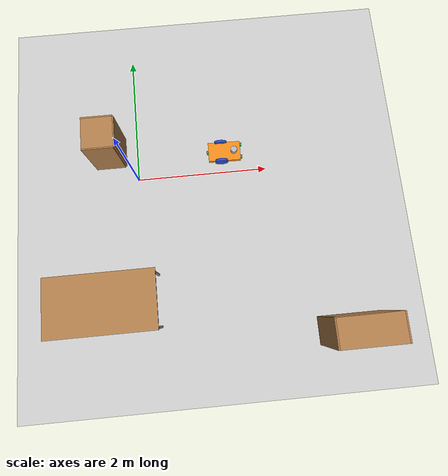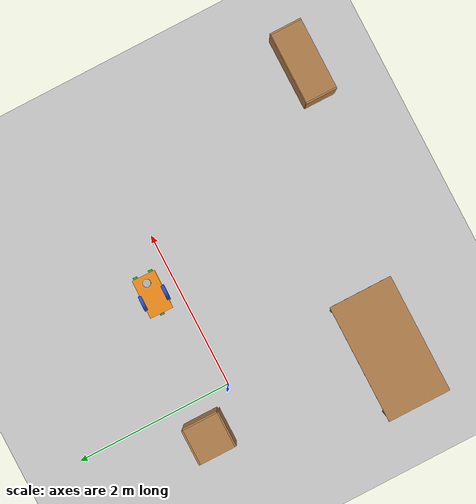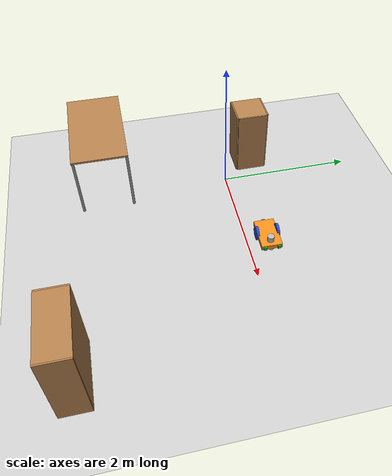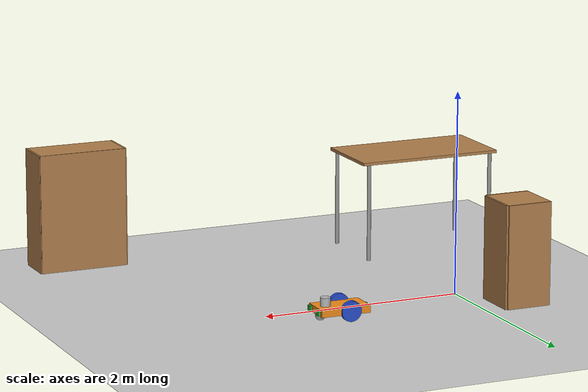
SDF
<sdf version="1.7">
 <world name="default">
  <light name="sun" type="directional">
   <pose>0 0 10 0 -0 0</pose>
   <diffuse>0.8 0.8 0.8 1</diffuse>
   <specular>0.2 0.2 0.2 1</specular>
   <attenuation>
    <range>1000</range>
    <constant>0.9</constant>
    <linear>0.01</linear>
    <quadratic>0.001</quadratic>
   </attenuation>
   <direction>-0.5 0.1 -0.9</direction>
   <spot><inner_angle>0</inner_angle><outer_angle>0</outer_angle><falloff>0</falloff></spot>
  </light>
  <model name="ground_plane">
   <static>1</static>
   <link name="link">
    <collision name="collision">
     <geometry><plane><normal>0 0 1</normal><size>100 100</size></plane></geometry>
     <surface><friction><ode><mu>100</mu><mu2>50</mu2></ode></friction></surface>
    </collision>
    <visual name="visual">
     <cast_shadows>0</cast_shadows>
     <geometry><plane><normal>0 0 1</normal><size>100 100</size></plane></geometry>
     <material>
      <script><uri>file://media/materials/scripts/gazebo.material</uri><name>Gazebo/Grey</name></script>
     </material>
    </visual>
   </link>
  </model>
  <gravity>0 0 -9.8</gravity>
  <magnetic_field>6e-06 2.3e-05 -4.2e-05</magnetic_field>
  <atmosphere type="adiabatic"/>
  <physics type="ode">
   <max_step_size>0.001</max_step_size>
   <real_time_factor>1</real_time_factor>
   <real_time_update_rate>1000</real_time_update_rate>
  </physics>
  <scene><ambient>0.4 0.4 0.4 1</ambient><background>0.7 0.7 0.7 1</background><shadows>1</shadows></scene>
  <spherical_coordinates>
   <surface_model>EARTH_WGS84</surface_model>
   <latitude_deg>0</latitude_deg>
   <longitude_deg>0</longitude_deg>
   <elevation>0</elevation>
   <heading_deg>0</heading_deg>
  </spherical_coordinates>
  <model name="first">
   <link name="link_chassis">
    <inertial>
     <pose>0.027778 0 0.090476 0 -0 0</pose>
     <mass>6.3</mass>
     <inertia>
      <ixx>0.0463316</ixx>
      <ixy>4.81868e-20</ixy>
      <ixz>0.00533333</ixz>
      <iyy>0.147387</iyy>
      <iyz>1.56951e-19</iyz>
      <izz>0.14585</izz>
     </inertia>
    </inertial>
    <collision name="link_chassis_fixed_joint_lump__collision_chassis_collision">
     <geometry><box><size>0.5 0.3 0.07</size></box></geometry>
    </collision>
    <collision name="link_chassis_fixed_joint_lump__caster_front_collision_collision_1">
     <pose>0.35 0 -0.05 0 -0 0</pose>
     <geometry><sphere><radius>0.05</radius></sphere></geometry>
    </collision>
    <collision name="link_chassis_fixed_joint_lump__camera_collision_2">
     <pose>0.25 0.1 0 0 -0 0</pose>
     <geometry><box><size>0.05 0.05 0.05</size></box></geometry>
    </collision>
    <collision name="link_chassis_fixed_joint_lump__camera2_collision_3">
     <pose>0.25 -0.1 0 0 -0 0</pose>
     <geometry><box><size>0.05 0.05 0.05</size></box></geometry>
    </collision>
    <collision name="link_chassis_fixed_joint_lump__camera3_collision_4">
     <pose>-0.25 0 0 0 -0 3.14</pose>
     <geometry><box><size>0.05 0.05 0.05</size></box></geometry>
    </collision>
    <collision name="link_chassis_fixed_joint_lump__sensor_laser_collision_5">
     <pose>0.15 0 0.07 0 -0 0</pose>
     <geometry><cylinder><length>0.1</length><radius>0.05</radius></cylinder></geometry>
    </collision>
    <visual name="link_chassis_visual">
     <geometry><box><size>0.5 0.3 0.07</size></box></geometry>
     <material>
      <script><name>Gazebo/Orange</name><uri>file://media/materials/scripts/gazebo.material</uri></script>
     </material>
    </visual>
    <visual name="link_chassis_fixed_joint_lump__caster_front_visual_visual_1">
     <pose>0.2 0 -0.05 0 -0 0</pose>
     <geometry><sphere><radius>0.05</radius></sphere></geometry>
    </visual>
    <visual name="link_chassis_fixed_joint_lump__camera_visual_2">
     <pose>0.25 0.1 0 0 -0 0</pose>
     <geometry><box><size>0.05 0.05 0.05</size></box></geometry>
     <material>
      <script><name>Gazebo/Green</name><uri>file://media/materials/scripts/gazebo.material</uri></script>
     </material>
    </visual>
    <visual name="link_chassis_fixed_joint_lump__camera2_visual_3">
     <pose>0.25 -0.1 0 0 -0 0</pose>
     <geometry><box><size>0.05 0.05 0.05</size></box></geometry>
     <material>
      <script><name>Gazebo/Green</name><uri>file://media/materials/scripts/gazebo.material</uri></script>
     </material>
    </visual>
    <visual name="link_chassis_fixed_joint_lump__camera3_visual_4">
     <pose>-0.25 0 0 0 -0 3.14</pose>
     <geometry><box><size>0.05 0.05 0.05</size></box></geometry>
     <material>
      <script><name>Gazebo/Green</name><uri>file://media/materials/scripts/gazebo.material</uri></script>
     </material>
    </visual>
    <visual name="link_chassis_fixed_joint_lump__sensor_laser_visual_5">
     <pose>0.15 0 0.07 0 -0 0</pose>
     <geometry><cylinder><length>0.1</length><radius>0.05</radius></cylinder></geometry>
    </visual>
    <sensor name="camera1" type="camera">
     <update_rate>30</update_rate>
     <camera name="head">
      <horizontal_fov>1.39626</horizontal_fov>
      <image><width>800</width><height>800</height><format>R8G8B8</format></image>
      <clip><near>0.02</near><far>300</far></clip>
     </camera>
     <plugin name="camera_controller" filename="libgazebo_ros_camera.so">
      <alwaysOn>1</alwaysOn>
      <updateRate>0.0</updateRate>
      <cameraName>mybot/camera1</cameraName>
      <imageTopicName>image_raw</imageTopicName>
      <cameraInfoTopicName>camera_info</cameraInfoTopicName>
      <frameName>camera</frameName>
      <hackBaseline>0.07</hackBaseline>
      <distortionK1>0.0</distortionK1>
      <distortionK2>0.0</distortionK2>
      <distortionK3>0.0</distortionK3>
      <distortionT1>0.0</distortionT1>
      <distortionT2>0.0</distortionT2>
      <robotNamespace>/</robotNamespace>
     </plugin>
     <pose>0.25 0.1 0 0 -0 0</pose>
    </sensor>
    <sensor name="camera2" type="camera">
     <update_rate>30</update_rate>
     <camera name="head">
      <horizontal_fov>1.39626</horizontal_fov>
      <image><width>800</width><height>800</height><format>R8G8B8</format></image>
      <clip><near>0.02</near><far>300</far></clip>
     </camera>
     <plugin name="camera_controller" filename="libgazebo_ros_camera.so">
      <alwaysOn>1</alwaysOn>
      <updateRate>0.0</updateRate>
      <cameraName>mybot/camera2</cameraName>
      <imageTopicName>image_raw</imageTopicName>
      <cameraInfoTopicName>camera_info</cameraInfoTopicName>
      <frameName>camera</frameName>
      <hackBaseline>0.07</hackBaseline>
      <distortionK1>0.0</distortionK1>
      <distortionK2>0.0</distortionK2>
      <distortionK3>0.0</distortionK3>
      <distortionT1>0.0</distortionT1>
      <distortionT2>0.0</distortionT2>
      <robotNamespace>/</robotNamespace>
     </plugin>
     <pose>0.25 -0.1 0 0 -0 0</pose>
    </sensor>
    <sensor name="camera3" type="camera">
     <update_rate>30</update_rate>
     <camera name="head">
      <horizontal_fov>1.39626</horizontal_fov>
      <image><width>800</width><height>800</height><format>R8G8B8</format></image>
      <clip><near>0.02</near><far>300</far></clip>
     </camera>
     <plugin name="camera_controller" filename="libgazebo_ros_camera.so">
      <alwaysOn>1</alwaysOn>
      <updateRate>0.0</updateRate>
      <cameraName>mybot/camera3</cameraName>
      <imageTopicName>image_raw</imageTopicName>
      <cameraInfoTopicName>camera_info</cameraInfoTopicName>
      <frameName>camera</frameName>
      <hackBaseline>0.07</hackBaseline>
      <distortionK1>0.0</distortionK1>
      <distortionK2>0.0</distortionK2>
      <distortionK3>0.0</distortionK3>
      <distortionT1>0.0</distortionT1>
      <distortionT2>0.0</distortionT2>
      <robotNamespace>/</robotNamespace>
     </plugin>
     <pose>-0.25 0 0 0 -0 3.14</pose>
    </sensor>
    <sensor name="head_hokuyo_sensor" type="ray">
     <visualize>1</visualize>
     <update_rate>40</update_rate>
     <ray>
      <scan>
       <horizontal>
        <samples>720</samples>
        <resolution>1</resolution>
        <min_angle>-3.14159</min_angle>
        <max_angle>3.14159</max_angle>
       </horizontal>
       <vertical><samples>1</samples><min_angle>0</min_angle><max_angle>0</max_angle></vertical>
      </scan>
      <range><min>0.1</min><max>30</max><resolution>0.01</resolution></range>
      <noise><type>gaussian</type><mean>0</mean><stddev>0.01</stddev></noise>
     </ray>
     <plugin name="gazebo_ros_head_hokuyo_controller" filename="libgazebo_ros_laser.so">
      <topicName>/first/laser/scan</topicName>
      <frameName>sensor_laser</frameName>
      <robotNamespace>/</robotNamespace>
     </plugin>
     <pose>0.15 0 0.07 0 -0 0</pose>
    </sensor>
   </link>
   <joint name="joint_left_wheel" type="revolute">
    <pose relative_to="link_chassis">-0.05 -0.15 0 0 -0 0</pose>
    <parent>link_chassis</parent>
    <child>link_left_wheel</child>
    <axis>
     <xyz>0 1 0</xyz>
     <limit><lower>-1e+16</lower><upper>1e+16</upper></limit>
     <dynamics><spring_reference>0</spring_reference><spring_stiffness>0</spring_stiffness></dynamics>
    </axis>
   </joint>
   <link name="link_left_wheel">
    <pose relative_to="joint_left_wheel">0 0 0 0 -0 0</pose>
    <inertial>
     <pose>0 0 0 -0 1.5707 1.5707</pose>
     <mass>0.2</mass>
     <inertia>
      <ixx>0.000526667</ixx>
      <ixy>0</ixy>
      <ixz>0</ixz>
      <iyy>0.000526667</iyy>
      <iyz>0</iyz>
      <izz>0.001</izz>
     </inertia>
    </inertial>
    <collision name="link_left_wheel_collision_collision">
     <pose>0 0 0 1.57089 1.57079 -3.14159</pose>
     <geometry><cylinder><length>0.04</length><radius>0.1</radius></cylinder></geometry>
    </collision>
    <visual name="link_left_wheel_visual_visual">
     <pose>0 0 0 1.57089 1.57079 -3.14159</pose>
     <geometry><cylinder><length>0.04</length><radius>0.1</radius></cylinder></geometry>
     <material>
      <script><name>Gazebo/Blue</name><uri>file://media/materials/scripts/gazebo.material</uri></script>
     </material>
    </visual>
   </link>
   <joint name="joint_right_wheel" type="revolute">
    <pose relative_to="link_chassis">-0.05 0.15 0 0 -0 0</pose>
    <parent>link_chassis</parent>
    <child>link_right_wheel</child>
    <axis>
     <xyz>0 1 0</xyz>
     <limit><lower>-1e+16</lower><upper>1e+16</upper></limit>
     <dynamics><spring_reference>0</spring_reference><spring_stiffness>0</spring_stiffness></dynamics>
    </axis>
   </joint>
   <link name="link_right_wheel">
    <pose relative_to="joint_right_wheel">0 0 0 0 -0 0</pose>
    <inertial>
     <pose>0 0 0 -0 1.5707 1.5707</pose>
     <mass>0.2</mass>
     <inertia>
      <ixx>0.000526667</ixx>
      <ixy>0</ixy>
      <ixz>0</ixz>
      <iyy>0.000526667</iyy>
      <iyz>0</iyz>
      <izz>0.001</izz>
     </inertia>
    </inertial>
    <collision name="link_right_wheel_collision_collision">
     <pose>0 0 0 1.57089 1.57079 -3.14159</pose>
     <geometry><cylinder><length>0.04</length><radius>0.1</radius></cylinder></geometry>
    </collision>
    <visual name="link_right_wheel_visual_visual">
     <pose>0 0 0 1.57089 1.57079 -3.14159</pose>
     <geometry><cylinder><length>0.04</length><radius>0.1</radius></cylinder></geometry>
     <material>
      <script><name>Gazebo/Blue</name><uri>file://media/materials/scripts/gazebo.material</uri></script>
     </material>
    </visual>
   </link>
   <static>0</static>
   <plugin name="differential_drive_controller" filename="libgazebo_ros_diff_drive.so">
    <legacyMode>0</legacyMode>
    <alwaysOn>1</alwaysOn>
    <updateRate>20</updateRate>
    <leftJoint>joint_left_wheel</leftJoint>
    <rightJoint>joint_right_wheel</rightJoint>
    <wheelSeparation>0.2</wheelSeparation>
    <wheelDiameter>0.2</wheelDiameter>
    <torque>0.1</torque>
    <commandTopic>cmd_vel</commandTopic>
    <odometryTopic>odom</odometryTopic>
    <odometryFrame>odom</odometryFrame>
    <robotBaseFrame>link_chassis</robotBaseFrame>
    <robotNamespace>/</robotNamespace>
   </plugin>
   <pose>1.37518 0.307802 0.100001 -9e-06 2e-06 -0.020518</pose>
  </model>
  <model name="bookshelf">
   <static>1</static>
   <link name="link">
    <inertial><mass>1</mass></inertial>
    <collision name="back">
     <pose>0 0.005 0.6 0 -0 0</pose>
     <geometry><box><size>0.9 0.01 1.2</size></box></geometry>
    </collision>
    <visual name="visual1">
     <pose>0 0.005 0.6 0 -0 0</pose>
     <geometry><box><size>0.9 0.01 1.2</size></box></geometry>
     <material>
      <script><uri>file://media/materials/scripts/gazebo.material</uri><name>Gazebo/Wood</name></script>
     </material>
    </visual>
    <collision name="left_side">
     <pose>0.45 -0.195 0.6 0 -0 0</pose>
     <geometry><box><size>0.02 0.4 1.2</size></box></geometry>
    </collision>
    <visual name="visual2">
     <pose>0.45 -0.195 0.6 0 -0 0</pose>
     <geometry><box><size>0.02 0.4 1.2</size></box></geometry>
     <material>
      <script><uri>file://media/materials/scripts/gazebo.material</uri><name>Gazebo/Wood</name></script>
     </material>
    </visual>
    <collision name="right_side">
     <pose>-0.45 -0.195 0.6 0 -0 0</pose>
     <geometry><box><size>0.02 0.4 1.2</size></box></geometry>
    </collision>
    <visual name="visual3">
     <pose>-0.45 -0.195 0.6 0 -0 0</pose>
     <geometry><box><size>0.02 0.4 1.2</size></box></geometry>
     <material>
      <script><uri>file://media/materials/scripts/gazebo.material</uri><name>Gazebo/Wood</name></script>
     </material>
    </visual>
    <collision name="bottom">
     <pose>0 -0.195 0.03 0 -0 0</pose>
     <geometry><box><size>0.88 0.4 0.06</size></box></geometry>
    </collision>
    <visual name="visual4">
     <pose>0 -0.195 0.03 0 -0 0</pose>
     <geometry><box><size>0.88 0.4 0.06</size></box></geometry>
     <material>
      <script><uri>file://media/materials/scripts/gazebo.material</uri><name>Gazebo/Wood</name></script>
     </material>
    </visual>
    <collision name="top">
     <pose>0 -0.195 1.19 0 -0 0</pose>
     <geometry><box><size>0.88 0.4 0.02</size></box></geometry>
    </collision>
    <visual name="visual5">
     <pose>0 -0.195 1.19 0 -0 0</pose>
     <geometry><box><size>0.88 0.4 0.02</size></box></geometry>
     <material>
      <script><uri>file://media/materials/scripts/gazebo.material</uri><name>Gazebo/Wood</name></script>
     </material>
    </visual>
    <collision name="low_shelf">
     <pose>0 -0.195 0.43 0 -0 0</pose>
     <geometry><box><size>0.88 0.4 0.02</size></box></geometry>
    </collision>
    <visual name="visual6">
     <pose>0 -0.195 0.43 0 -0 0</pose>
     <geometry><box><size>0.88 0.4 0.02</size></box></geometry>
     <material>
      <script><uri>file://media/materials/scripts/gazebo.material</uri><name>Gazebo/Wood</name></script>
     </material>
    </visual>
    <collision name="high_shelf">
     <pose>0 -0.195 0.8 0 -0 0</pose>
     <geometry><box><size>0.88 0.4 0.02</size></box></geometry>
    </collision>
    <visual name="visual7">
     <pose>0 -0.195 0.8 0 -0 0</pose>
     <geometry><box><size>0.88 0.4 0.02</size></box></geometry>
     <material>
      <script><uri>file://media/materials/scripts/gazebo.material</uri><name>Gazebo/Wood</name></script>
     </material>
    </visual>
   </link>
   <pose>2.95984 -2.33477 0 0 -0 0</pose>
  </model>
  <model name="cabinet">
   <static>1</static>
   <link name="cabinet_bottom_plate">
    <inertial>
     <pose>0 0 -1 0 -0 0</pose>
     <inertia><ixx>2.05</ixx><ixy>0</ixy><ixz>0</ixz><iyy>2.05</iyy><iyz>0</iyz><izz>2.05</izz></inertia>
     <mass>25</mass>
    </inertial>
    <collision name="cabinet_bottom_plate_geom">
     <pose>0 0 0.01 0 -0 0</pose>
     <geometry><box><size>0.45 0.45 0.02</size></box></geometry>
    </collision>
    <visual name="cabinet_bottom_plate_geom_visual">
     <pose>0 0 0.01 0 -0 0</pose>
     <geometry><box><size>0.45 0.45 0.02</size></box></geometry>
     <material>
      <script><uri>file://media/materials/scripts/gazebo.material</uri><name>Gazebo/Wood</name></script>
     </material>
    </visual>
    <collision name="cabinet_bottom_plate_geom_cabinet_back_plate">
     <pose>0.235 0 0.51 0 -0 0</pose>
     <geometry><box><size>0.02 0.45 1.02</size></box></geometry>
    </collision>
    <visual name="cabinet_bottom_plate_geom_cabinet_back_plate_visual">
     <pose>0.235 0 0.51 0 -0 0</pose>
     <geometry><box><size>0.02 0.45 1.02</size></box></geometry>
     <material>
      <script><uri>file://media/materials/scripts/gazebo.material</uri><name>Gazebo/Wood</name></script>
     </material>
    </visual>
    <collision name="cabinet_bottom_plate_geom_cabinet_left_plate">
     <pose>0 0.235 0.51 0 -0 0</pose>
     <geometry><box><size>0.45 0.02 1.02</size></box></geometry>
    </collision>
    <visual name="cabinet_bottom_plate_geom_cabinet_left_plate_visual">
     <pose>0 0.235 0.51 0 -0 0</pose>
     <geometry><box><size>0.45 0.02 1.02</size></box></geometry>
     <material>
      <script><uri>file://media/materials/scripts/gazebo.material</uri><name>Gazebo/Wood</name></script>
     </material>
    </visual>
    <collision name="cabinet_bottom_plate_geom_cabinet_middle_plate">
     <pose>0 0 0.51 0 -0 0</pose>
     <geometry><box><size>0.45 0.45 0.02</size></box></geometry>
    </collision>
    <visual name="cabinet_bottom_plate_geom_cabinet_middle_plate_visual">
     <pose>0 0 0.51 0 -0 0</pose>
     <geometry><box><size>0.45 0.45 0.02</size></box></geometry>
     <material>
      <script><uri>file://media/materials/scripts/gazebo.material</uri><name>Gazebo/Wood</name></script>
     </material>
    </visual>
    <collision name="cabinet_bottom_plate_geom_cabinet_right_plate">
     <pose>0 -0.235 0.51 0 -0 0</pose>
     <geometry><box><size>0.45 0.02 1.02</size></box></geometry>
    </collision>
    <visual name="cabinet_bottom_plate_geom_cabinet_right_plate_visual">
     <pose>0 -0.235 0.51 0 -0 0</pose>
     <geometry><box><size>0.45 0.02 1.02</size></box></geometry>
     <material>
      <script><uri>file://media/materials/scripts/gazebo.material</uri><name>Gazebo/Wood</name></script>
     </material>
    </visual>
    <collision name="cabinet_bottom_plate_geom_cabinet_top_plate">
     <pose>0 0 1.01 0 -0 0</pose>
     <geometry><box><size>0.45 0.45 0.02</size></box></geometry>
    </collision>
    <visual name="cabinet_bottom_plate_geom_cabinet_top_plate_visual">
     <pose>0 0 1.01 0 -0 0</pose>
     <geometry><box><size>0.45 0.45 0.02</size></box></geometry>
     <material>
      <script><uri>file://media/materials/scripts/gazebo.material</uri><name>Gazebo/Wood</name></script>
     </material>
    </visual>
   </link>
   <pose>-0.421534 0.472223 0 0 -0 0</pose>
  </model>
  <light name="sun" type="directional">
   <pose>1.23267 1.47484 10 0 -0 0</pose>
   <diffuse>0.8 0.8 0.8 1</diffuse>
   <specular>0.2 0.2 0.2 1</specular>
   <attenuation>
    <range>1000</range>
    <constant>0.9</constant>
    <linear>0.01</linear>
    <quadratic>0.001</quadratic>
   </attenuation>
   <direction>-0.5 0.1 -0.9</direction>
  </light>
  <model name="table">
   <static>1</static>
   <link name="link">
    <collision name="surface">
     <pose>0 0 1 0 -0 0</pose>
     <geometry><box><size>1.5 0.8 0.03</size></box></geometry>
     <surface><friction><ode><mu>0.6</mu><mu2>0.6</mu2></ode></friction></surface>
    </collision>
    <visual name="visual1">
     <pose>0 0 1 0 -0 0</pose>
     <geometry><box><size>1.5 0.8 0.03</size></box></geometry>
     <material>
      <script><uri>file://media/materials/scripts/gazebo.material</uri><name>Gazebo/Wood</name></script>
     </material>
    </visual>
    <collision name="front_left_leg">
     <pose>0.68 0.38 0.5 0 -0 0</pose>
     <geometry><cylinder><radius>0.02</radius><length>1</length></cylinder></geometry>
    </collision>
    <visual name="front_left_leg">
     <pose>0.68 0.38 0.5 0 -0 0</pose>
     <geometry><cylinder><radius>0.02</radius><length>1</length></cylinder></geometry>
     <material>
      <script><uri>file://media/materials/scripts/gazebo.material</uri><name>Gazebo/Grey</name></script>
     </material>
    </visual>
    <collision name="front_right_leg">
     <pose>0.68 -0.38 0.5 0 -0 0</pose>
     <geometry><cylinder><radius>0.02</radius><length>1</length></cylinder></geometry>
    </collision>
    <visual name="front_right_leg">
     <pose>0.68 -0.38 0.5 0 -0 0</pose>
     <geometry><cylinder><radius>0.02</radius><length>1</length></cylinder></geometry>
     <material>
      <script><uri>file://media/materials/scripts/gazebo.material</uri><name>Gazebo/Grey</name></script>
     </material>
    </visual>
    <collision name="back_right_leg">
     <pose>-0.68 -0.38 0.5 0 -0 0</pose>
     <geometry><cylinder><radius>0.02</radius><length>1</length></cylinder></geometry>
    </collision>
    <visual name="back_right_leg">
     <pose>-0.68 -0.38 0.5 0 -0 0</pose>
     <geometry><cylinder><radius>0.02</radius><length>1</length></cylinder></geometry>
     <material>
      <script><uri>file://media/materials/scripts/gazebo.material</uri><name>Gazebo/Grey</name></script>
     </material>
    </visual>
    <collision name="back_left_leg">
     <pose>-0.68 0.38 0.5 0 -0 0</pose>
     <geometry><cylinder><radius>0.02</radius><length>1</length></cylinder></geometry>
    </collision>
    <visual name="back_left_leg">
     <pose>-0.68 0.38 0.5 0 -0 0</pose>
     <geometry><cylinder><radius>0.02</radius><length>1</length></cylinder></geometry>
     <material>
      <script><uri>file://media/materials/scripts/gazebo.material</uri><name>Gazebo/Grey</name></script>
     </material>
    </visual>
   </link>
   <pose>-0.467744 -1.88017 0 0 -0 0</pose>
  </model>
  <light name="sun" type="directional">
   <pose>1.11821 0.23848 10 0 -0 0</pose>
   <diffuse>0.8 0.8 0.8 1</diffuse>
   <specular>0.2 0.2 0.2 1</specular>
   <attenuation>
    <range>1000</range>
    <constant>0.9</constant>
    <linear>0.01</linear>
    <quadratic>0.001</quadratic>
   </attenuation>
   <direction>-0.5 0.1 -0.9</direction>
  </light>
  <light name="sun" type="directional">
   <pose>4.72298 1.03388 10 0 -0 0</pose>
   <diffuse>0.8 0.8 0.8 1</diffuse>
   <specular>0.2 0.2 0.2 1</specular>
   <attenuation>
    <range>1000</range>
    <constant>0.9</constant>
    <linear>0.01</linear>
    <quadratic>0.001</quadratic>
   </attenuation>
   <direction>-0.5 0.1 -0.9</direction>
  </light>
 </world>
</sdf>
